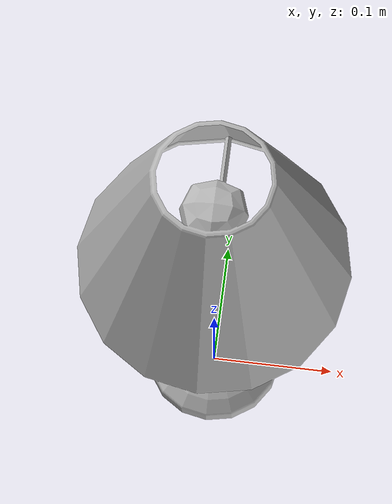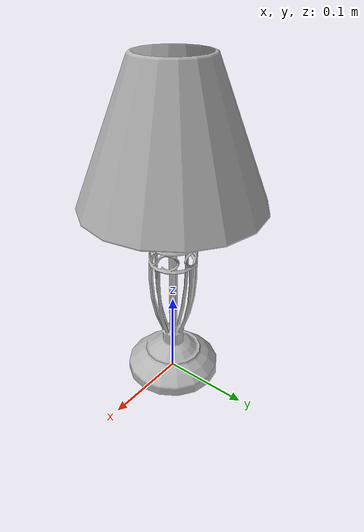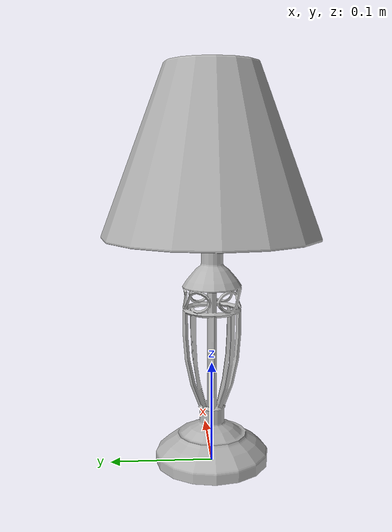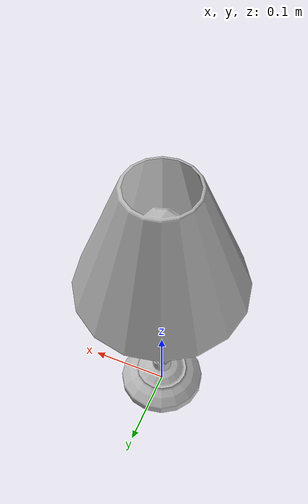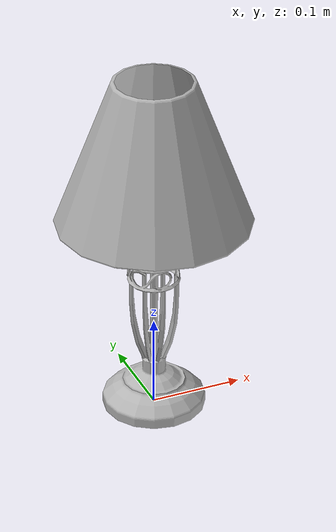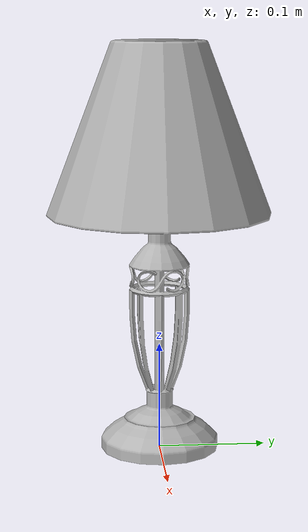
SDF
<?xml version='1.0'?>
<sdf version='1.4'>
  <model name='684'>
    <pose>0 0 0 0 0 0</pose>
    <static>true</static>
    <link name='link'>
      <collision name='collision'>
        <pose>0 0 0 0 0 0</pose>
        <geometry>
          <box>
            <size>0.208572 0.208572 2</size>
          </box>
        </geometry>
      </collision>
      <visual name='visual'>
        <pose>0 0 0 0 0 0</pose>
        <geometry>
          <mesh><uri>model://684/684.dae</uri></mesh>
        </geometry>
      </visual>
    </link>
  </model>
</sdf>
